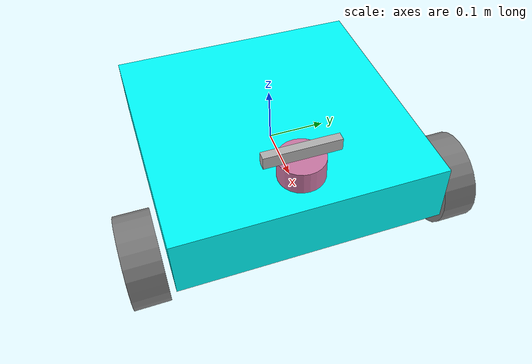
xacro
<?xml version="1.0"?>
<robot name="jtbot"
  xmlns:xacro="http://ros.org/wiki/xacro">
<!-- |    xacro文件转urdf文件方法：                                                       | -->
<!-- |    在当前文件夹打开终端，输入xacro jtbot_base.urdf.xacro > jtbot_base.urdf           | -->
<!-- |    在当前文件夹生成jtbot_base.urdf纯urdf文件                                        | -->
  <!-- 定义机器人常量 -->
  <!-- 底盘 长 宽 高 -->
  <xacro:property name="base_width" value="0.46"/>
  <xacro:property name="base_length" value="0.46"/>
  <xacro:property name="base_height" value="0.11"/>
  <!-- 轮子半径 -->
  <xacro:property name="wheel_radius" value="0.0775"/>
  <!-- 轮子宽度 -->
  <xacro:property name="wheel_width" value="0.06"/>
  <!-- 轮子和底盘的间距 -->
  <xacro:property name="wheel_ygap" value="0.01"/>
  <!-- 轮子z轴偏移量 -->
  <xacro:property name="wheel_zoff" value="0.055"/>
  <!-- 轮子x轴偏移量 -->
  <xacro:property name="wheel_xoff" value="0.15"/>
  <!-- 支撑轮x轴偏移量 -->
  <xacro:property name="caster_xoff" value="0.205"/>

  <!-- 定义长方形惯性属性宏  -->
  <xacro:macro name="box_inertia" params="m w h d">
    <inertial>
      <mass value="${m}"/>
      <inertia ixx="${(m/12) * (h*h + d*d)}" ixy="0.0" ixz="0.0" iyy="${(m/12) * (w*w + d*d)}" iyz="0.0" izz="${(m/12) * (w*w + h*h)}"/>
    </inertial>
  </xacro:macro>
  <!-- 定义圆柱惯性属性宏  -->
  <xacro:macro name="cylinder_inertia" params="m r h">
    <inertial>
      <mass value="${m}"/>
      <inertia ixx="${(m/12) * (3*r*r + h*h)}" ixy = "0" ixz = "0" iyy="${(m/12) * (3*r*r + h*h)}" iyz = "0" izz="${(m/2) * (r*r)}"/>
    </inertial>
  </xacro:macro>
  <!-- 定义球体惯性属性宏  -->
  <xacro:macro name="sphere_inertia" params="m r">
    <inertial>
      <mass value="${m}"/>
      <inertia ixx="${(2/5) * m * (r*r)}" ixy="0.0" ixz="0.0" iyy="${(2/5) * m * (r*r)}" iyz="0.0" izz="${(2/5) * m * (r*r)}"/>
    </inertial>
  </xacro:macro>

  <!-- 机器人底盘 -->
  <link name="base_link">
    <visual>
      <geometry>
        <box size="${base_length} ${base_width} ${base_height}"/>
      </geometry>
      <material name="Cyan">
        <color rgba="0 1.0 1.0 1.0"/>
      </material>
    </visual>
    <!-- 碰撞区域 -->
    <collision>
      <geometry>
        <box size="${base_length} ${base_width} ${base_height}"/>
      </geometry>
    </collision>
    <!-- 惯性特性 gazebo仿真需打开下面屏蔽-->
  </link>

  <!-- 机器人 Footprint -->
  <link name="base_footprint"/>
  <!-- 底盘关节 -->
  <joint name="base_joint" type="fixed">
    <parent link="base_link"/>
    <child link="base_footprint"/>
    <origin xyz="0.0 0.0 ${-(wheel_radius+wheel_zoff)}" rpy="0 0 0"/>
  </joint>

  <!-- 创建轮子宏函数 -->
  <xacro:macro name="wheel" params="prefix x_reflect y_reflect">
    <link name="${prefix}_link">
      <visual>
        <origin xyz="0 0 0" rpy="${pi/2} 0 0"/>
        <geometry>
          <cylinder radius="${wheel_radius}" length="${wheel_width}"/>
        </geometry>
        <material name="Gray">
          <color rgba="0.5 0.5 0.5 1.0"/>
        </material>
      </visual>
      <!-- 碰撞区域 -->
      <collision>
        <origin xyz="0 0 0" rpy="${pi/2} 0 0"/>
        <geometry>
          <cylinder radius="${wheel_radius}" length="${wheel_width}"/>
        </geometry>
      </collision>
      <!-- 惯性属性 -->
      <xacro:cylinder_inertia m="0.2" r="${wheel_radius}" h="${wheel_width}"/>
    </link>
    <!-- 轮子关节 -->
    <joint name="${prefix}_joint" type="continuous">
      <parent link="base_link"/>
      <child link="${prefix}_link"/>
      <origin xyz="${x_reflect*wheel_xoff} ${y_reflect*(base_width/2+wheel_width/2+wheel_ygap)} ${-wheel_zoff}" rpy="0 0 0"/>
      <axis xyz="0 1 0"/>
    </joint>
  </xacro:macro>
  <!-- 根据上面的宏函数实例化左右轮 -->
  <xacro:wheel prefix="left_wheel" x_reflect="1" y_reflect="1" />
  <xacro:wheel prefix="right_wheel" x_reflect="1" y_reflect="-1" />

    <!-- 差速驱动仿真插件 -->
  <gazebo>
    <plugin name='diff_drive' filename='libgazebo_ros_diff_drive.so'>
      <ros>
        <!-- 命名空间 -->
      </ros>

      <!-- 左右轮子 -->
      <left_joint>left_wheel_joint</left_joint>
      <right_joint>right_wheel_joint</right_joint>

      <!-- 轮距 轮子直径 -->
      <wheel_separation>${base_width+wheel_width}</wheel_separation>
      <wheel_diameter>${wheel_radius*2}</wheel_diameter>

      <!-- 最大扭矩 最大加速度 -->
      <max_wheel_torque>20</max_wheel_torque>
      <max_wheel_acceleration>1.0</max_wheel_acceleration>

      <!-- 输出 -->
      <!-- 是否发布里程计 -->
      <publish_odom>true</publish_odom>
      <!-- 是否发布里程计的tf开关 -->
      <publish_odom_tf>true</publish_odom_tf>
      <!-- 是否发布轮子的tf数据开关 -->
      <publish_wheel_tf>true</publish_wheel_tf>

      <!-- 里程计的framed ID，最终体现在话题和TF上 -->
      <odometry_frame>odom</odometry_frame>
      <!-- 机器人的基础frame的ID -->
      <robot_base_frame>base_link</robot_base_frame>
    </plugin>
  </gazebo>

  <!-- 支撑轮 -->
  <link name="caster_link">
    <visual>
      <geometry>
        <sphere radius="${(wheel_radius)}"/>
      </geometry>
      <material name="Cyan">
        <color rgba="0 1.0 1.0 1.0"/>
      </material>
    </visual>
    <!-- 碰撞区域 -->
    <collision>
      <origin xyz="0 0 0" rpy="0 0 0"/>
      <geometry>
        <sphere radius="${(wheel_radius/2)}"/>
      </geometry>
    </collision>
    <!-- 惯性属性 -->
    <xacro:sphere_inertia m="0.2" r="${(wheel_radius/2)}"/>
  </link>
  <!-- 支撑轮gazebo颜色 -->
  <gazebo reference="caster_link">
    <material>Gazebo/Black</material>
  </gazebo>
  <!-- 支撑轮gazebo摩擦力 -->
  <gazebo reference="caster_link">
    <mu1 value="0"/>
    <mu2 value="0"/>
    <kp value="1000000.0" />
    <kd value="10.0" />
  </gazebo>
  <!-- 支撑轮关节 -->
  <joint name="caster_joint" type="fixed">
    <parent link="base_link"/>
    <child link="caster_link"/>
    <origin xyz="${-caster_xoff} 0.0 ${-(base_height+wheel_radius)/2}" rpy="0 0 0"/>
  </joint>
  <!-- imu -->
  <link name="imu_link">
    <visual>
      <geometry>
        <box size="0.06 0.03 0.03"/>
      </geometry>
    </visual>
    <!-- 碰撞区域 -->
    <collision>
      <geometry>
        <box size="0.06 0.03 0.03"/>
      </geometry>
    </collision>
    <!-- 惯性属性 -->
    <xacro:box_inertia m="0.1" w="0.1" d="0.1" h="0.1"/>
  </link>
  <!-- imu关节 -->
  <joint name="imu_joint" type="fixed">
    <parent link="base_link"/>
    <child link="imu_link"/>
    <origin xyz="-0.05 0 -0.055"/>
  </joint>
  <!-- imu仿真插件 -->
  <gazebo reference="imu_link">
    <sensor name="imu_sensor" type="imu">
      <plugin filename="libgazebo_ros_imu_sensor.so" name="imu_plugin">
        <ros>
          <!-- 命名空间 -->
          <remapping>~/out:=imu</remapping>
        </ros>
        <!-- 初始方位_参考 -->
        <initial_orientation_as_reference>true</initial_orientation_as_reference>
      </plugin>
      <always_on>true</always_on>
      <!-- 更新频率 -->
      <update_rate>100</update_rate>
      <visualize>true</visualize>
      <imu>
        <!-- 角速度 -->
        <angular_velocity>
          <x>
            <noise type="gaussian">
              <mean>0.0</mean>
              <stddev>2e-4</stddev>
              <bias_mean>0.0000075</bias_mean>
              <bias_stddev>0.0000008</bias_stddev>
            </noise>
          </x>
          <y>
            <noise type="gaussian">
              <mean>0.0</mean>
              <stddev>2e-4</stddev>
              <bias_mean>0.0000075</bias_mean>
              <bias_stddev>0.0000008</bias_stddev>
            </noise>
          </y>
          <z>
            <noise type="gaussian">
              <mean>0.0</mean>
              <stddev>2e-4</stddev>
              <bias_mean>0.0000075</bias_mean>
              <bias_stddev>0.0000008</bias_stddev>
            </noise>
          </z>
        </angular_velocity>
        <!-- 线性加速度 -->
        <linear_acceleration>
          <x>
            <noise type="gaussian">
              <mean>0.0</mean>
              <stddev>1.7e-2</stddev>
              <bias_mean>0.1</bias_mean>
              <bias_stddev>0.001</bias_stddev>
            </noise>
          </x>
          <y>
            <noise type="gaussian">
              <mean>0.0</mean>
              <stddev>1.7e-2</stddev>
              <bias_mean>0.1</bias_mean>
              <bias_stddev>0.001</bias_stddev>
            </noise>
          </y>
          <z>
            <noise type="gaussian">
              <mean>0.0</mean>
              <stddev>1.7e-2</stddev>
              <bias_mean>0.1</bias_mean>
              <bias_stddev>0.001</bias_stddev>
            </noise>
          </z>
        </linear_acceleration>
      </imu>
    </sensor>
  </gazebo>

  <!-- 雷达 -->
  <link name="laser">
    <visual>
      <origin xyz="0 0 0" rpy="0 0 0"/>
      <geometry>
        <cylinder radius="0.04" length="0.04"/>
      </geometry>
    </visual>
    <!-- 惯性属性 -->
    <!-- 碰撞区域 -->
  </link>
  <!-- 雷达关节 -->
  <joint name="laser_joint" type="fixed">
    <parent link="base_link"/>
    <child link="laser"/>
    <origin xyz="0.16 0 0.078" rpy="0 0 0"/>
  </joint>

  <gazebo reference="laser">
    <sensor name="laser" type="ray">
      <always_on>true</always_on>
      <visualize>false</visualize>
      <update_rate>5</update_rate>
      <ray>
        <scan>
          <horizontal>
            <samples>360</samples>
            <resolution>1.000000</resolution>
            <min_angle>0.000000</min_angle>
            <max_angle>6.280000</max_angle>
          </horizontal>
        </scan>
        <range>
          <min>0.120000</min>
          <max>3.5</max>
          <resolution>0.015000</resolution>
        </range>
        <noise>
          <type>gaussian</type>
          <mean>0.0</mean>
          <stddev>0.01</stddev>
        </noise>
      </ray>
      <plugin name="scan" filename="libgazebo_ros_ray_sensor.so">
        <ros>
          <remapping>~/out:=scan</remapping>
        </ros>
        <output_type>sensor_msgs/LaserScan</output_type>
        <frame_name>laser</frame_name>
      </plugin>
    </sensor>
  </gazebo>
  <!-- 相机 -->
  <link name="camera_link">
    <visual>
      <origin xyz="0 0 0" rpy="0 0 0"/>
      <geometry>
        <box size="0.015 0.130 0.022"/>
      </geometry>
    </visual>
    <!-- 碰撞区域 -->
    <!-- 惯性属性 -->
  </link>
  <!-- 相机关节 -->
  <joint name="camera_joint" type="fixed">
    <parent link="base_link"/>
    <child link="camera_link"/>
    <origin xyz="0.16 0 0.11" rpy="0 0 0"/>
  </joint>
  <!-- 深度相机 -->
  <!-- 相机仿真 -->

</robot>
